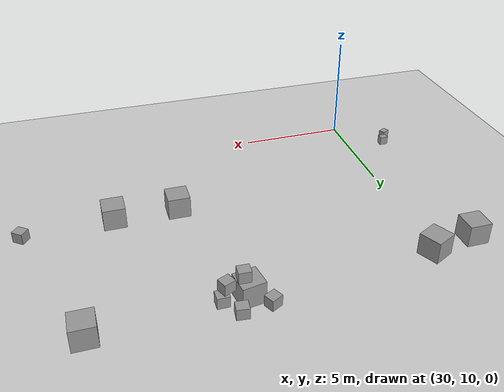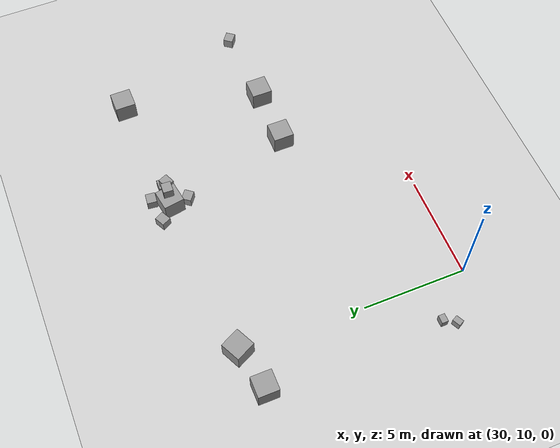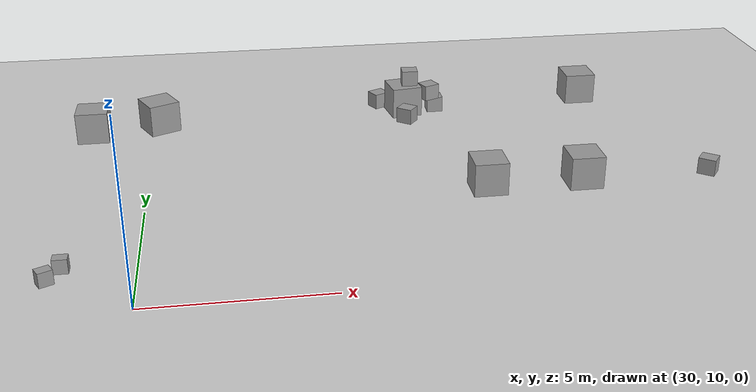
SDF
<sdf version="1.6">
 <world name="default">
  <model name="ground_plane">
   <static>1</static>
   <link name="link">
    <collision name="collision">
     <geometry><plane><normal>0 0 1</normal><size>100 100</size></plane></geometry>
     <surface><friction><ode><mu>100</mu><mu2>50</mu2></ode></friction></surface>
    </collision>
    <visual name="visual">
     <cast_shadows>0</cast_shadows>
     <geometry><plane><normal>0 0 1</normal><size>100 100</size></plane></geometry>
    </visual>
   </link>
  </model>
  <model name="unit_box_13">
   <pose>28.1368 20.5856 0.499995 0 1e-05 -5e-06</pose>
   <link name="link">
    <inertial>
     <mass>1</mass>
     <inertia>
      <ixx>0.166667</ixx>
      <ixy>0</ixy>
      <ixz>0</ixz>
      <iyy>0.166667</iyy>
      <iyz>0</iyz>
      <izz>0.166667</izz>
     </inertia>
    </inertial>
    <collision name="collision"><geometry><box><size>1 1 1</size></box></geometry></collision>
    <visual name="visual">
     <geometry><box><size>1 1 1</size></box></geometry>
     <material>
      <script><name>Gazebo/Grey</name><uri>file://media/materials/scripts/gazebo.material</uri></script>
     </material>
    </visual>
   </link>
  </model>
  <model name="unit_box_14">
   <pose>30.2002 21.0256 0.5 0 -0 0.452301</pose>
   <link name="link">
    <inertial>
     <mass>1</mass>
     <inertia>
      <ixx>0.166667</ixx>
      <ixy>0</ixy>
      <ixz>0</ixz>
      <iyy>0.166667</iyy>
      <iyz>0</iyz>
      <izz>0.166667</izz>
     </inertia>
    </inertial>
    <collision name="collision"><geometry><box><size>1 1 1</size></box></geometry></collision>
    <visual name="visual">
     <geometry><box><size>1 1 1</size></box></geometry>
     <material>
      <script><name>Gazebo/Grey</name><uri>file://media/materials/scripts/gazebo.material</uri></script>
     </material>
    </visual>
   </link>
  </model>
  <model name="unit_box_27">
   <pose>42.6981 15.1111 0.499995 -0 -1e-05 -2e-05</pose>
   <link name="link">
    <inertial>
     <mass>1</mass>
     <inertia>
      <ixx>0.166667</ixx>
      <ixy>0</ixy>
      <ixz>0</ixz>
      <iyy>0.166667</iyy>
      <iyz>0</iyz>
      <izz>0.166667</izz>
     </inertia>
    </inertial>
    <collision name="collision"><geometry><box><size>1 1 1</size></box></geometry></collision>
    <visual name="visual">
     <geometry><box><size>1 1 1</size></box></geometry>
     <material>
      <script><name>Gazebo/Grey</name><uri>file://media/materials/scripts/gazebo.material</uri></script>
     </material>
    </visual>
   </link>
  </model>
  <model name="unit_box_28">
   <pose>44.522 21.7416 0.499995 -0 1e-05 -2.6e-05</pose>
   <link name="link">
    <inertial>
     <mass>1</mass>
     <inertia>
      <ixx>0.166667</ixx>
      <ixy>0</ixy>
      <ixz>0</ixz>
      <iyy>0.166667</iyy>
      <iyz>0</iyz>
      <izz>0.166667</izz>
     </inertia>
    </inertial>
    <collision name="collision"><geometry><box><size>1 1 1</size></box></geometry></collision>
    <visual name="visual">
     <geometry><box><size>1 1 1</size></box></geometry>
     <material>
      <script><name>Gazebo/Grey</name><uri>file://media/materials/scripts/gazebo.material</uri></script>
     </material>
    </visual>
   </link>
  </model>
  <model name="unit_box_29">
   <pose>39.8352 15.0976 0.499995 0 1e-05 -5e-06</pose>
   <link name="link">
    <inertial>
     <mass>1</mass>
     <inertia>
      <ixx>0.166667</ixx>
      <ixy>0</ixy>
      <ixz>0</ixz>
      <iyy>0.166667</iyy>
      <iyz>0</iyz>
      <izz>0.166667</izz>
     </inertia>
    </inertial>
    <collision name="collision"><geometry><box><size>1 1 1</size></box></geometry></collision>
    <visual name="visual">
     <geometry><box><size>1 1 1</size></box></geometry>
     <material>
      <script><name>Gazebo/Grey</name><uri>file://media/materials/scripts/gazebo.material</uri></script>
     </material>
    </visual>
   </link>
  </model>
  <model name="unit_box_30">
   <pose>38.3279 21.3728 0.494445 0.000851 0.005459 0.161318</pose>
   <link name="link">
    <inertial>
     <mass>1</mass>
     <inertia>
      <ixx>0.166667</ixx>
      <ixy>0</ixy>
      <ixz>0</ixz>
      <iyy>0.166667</iyy>
      <iyz>0</iyz>
      <izz>0.166667</izz>
     </inertia>
    </inertial>
    <collision name="collision"><geometry><box><size>1 1 1</size></box></geometry></collision>
    <visual name="visual">
     <geometry><box><size>1 1 1</size></box></geometry>
     <material>
      <script><name>Gazebo/Grey</name><uri>file://media/materials/scripts/gazebo.material</uri></script>
     </material>
    </visual>
   </link>
  </model>
  <model name="unit_box_42_clone_0">
   <pose>27.7598 11.4922 0.206837 0 -0 0.469055</pose>
   <link name="link">
    <inertial>
     <mass>1</mass>
     <inertia>
      <ixx>0.166667</ixx>
      <ixy>0</ixy>
      <ixz>0</ixz>
      <iyy>0.166667</iyy>
      <iyz>0</iyz>
      <izz>0.166667</izz>
     </inertia>
    </inertial>
    <collision name="collision">
     <geometry><box><size>0.396678 0.307031 0.413675</size></box></geometry>
    </collision>
    <visual name="visual">
     <geometry><box><size>0.396678 0.307031 0.413675</size></box></geometry>
     <material>
      <script><name>Gazebo/Grey</name><uri>file://media/materials/scripts/gazebo.material</uri></script>
     </material>
    </visual>
   </link>
  </model>
  <model name="unit_box_42_clone_2">
   <pose>28.097 12.0584 0.206837 0 -0 0</pose>
   <link name="link">
    <inertial>
     <mass>1</mass>
     <inertia>
      <ixx>0.166667</ixx>
      <ixy>0</ixy>
      <ixz>0</ixz>
      <iyy>0.166667</iyy>
      <iyz>0</iyz>
      <izz>0.166667</izz>
     </inertia>
    </inertial>
    <collision name="collision">
     <geometry><box><size>0.396678 0.307031 0.413675</size></box></geometry>
    </collision>
    <visual name="visual">
     <geometry><box><size>0.396678 0.307031 0.413675</size></box></geometry>
     <material>
      <script><name>Gazebo/Grey</name><uri>file://media/materials/scripts/gazebo.material</uri></script>
     </material>
    </visual>
   </link>
  </model>
  <model name="unit_box_30_clone">
   <pose>39.3974 21.4071 0.25457 0.003434 -0.006384 0.005606</pose>
   <link name="link">
    <inertial>
     <mass>1</mass>
     <inertia>
      <ixx>0.166667</ixx>
      <ixy>0</ixy>
      <ixz>0</ixz>
      <iyy>0.166667</iyy>
      <iyz>0</iyz>
      <izz>0.166667</izz>
     </inertia>
    </inertial>
    <collision name="collision"><geometry><box><size>0.522325 0.47304 0.505069</size></box></geometry></collision>
    <visual name="visual">
     <geometry><box><size>0.522325 0.47304 0.505069</size></box></geometry>
     <material>
      <script><name>Gazebo/Grey</name><uri>file://media/materials/scripts/gazebo.material</uri></script>
     </material>
    </visual>
   </link>
  </model>
  <model name="unit_box_30_clone_0">
   <pose>39.178 21.2502 0.757787 4e-06 -0.008763 0.407809</pose>
   <link name="link">
    <inertial>
     <mass>1</mass>
     <inertia>
      <ixx>0.166667</ixx>
      <ixy>0</ixy>
      <ixz>0</ixz>
      <iyy>0.166667</iyy>
      <iyz>0</iyz>
      <izz>0.166667</izz>
     </inertia>
    </inertial>
    <collision name="collision"><geometry><box><size>0.522325 0.47304 0.505069</size></box></geometry></collision>
    <visual name="visual">
     <geometry><box><size>0.522325 0.47304 0.505069</size></box></geometry>
     <material>
      <script><name>Gazebo/Grey</name><uri>file://media/materials/scripts/gazebo.material</uri></script>
     </material>
    </visual>
   </link>
  </model>
  <model name="unit_box_30_clone_1">
   <pose>38.8376 22.1798 0.252534 0 -0 -0.107781</pose>
   <link name="link">
    <inertial>
     <mass>1</mass>
     <inertia>
      <ixx>0.166667</ixx>
      <ixy>0</ixy>
      <ixz>0</ixz>
      <iyy>0.166667</iyy>
      <iyz>0</iyz>
      <izz>0.166667</izz>
     </inertia>
    </inertial>
    <collision name="collision"><geometry><box><size>0.522325 0.47304 0.505069</size></box></geometry></collision>
    <visual name="visual">
     <geometry><box><size>0.522325 0.47304 0.505069</size></box></geometry>
     <material>
      <script><name>Gazebo/Grey</name><uri>file://media/materials/scripts/gazebo.material</uri></script>
     </material>
    </visual>
   </link>
  </model>
  <model name="unit_box_30_clone_2">
   <pose>38.5341 21.3745 1.24585 -0.000332 0.005542 -0.051632</pose>
   <link name="link">
    <inertial>
     <mass>1</mass>
     <inertia>
      <ixx>0.166667</ixx>
      <ixy>0</ixy>
      <ixz>0</ixz>
      <iyy>0.166667</iyy>
      <iyz>0</iyz>
      <izz>0.166667</izz>
     </inertia>
    </inertial>
    <collision name="collision"><geometry><box><size>0.522325 0.47304 0.505069</size></box></geometry></collision>
    <visual name="visual">
     <geometry><box><size>0.522325 0.47304 0.505069</size></box></geometry>
     <material>
      <script><name>Gazebo/Grey</name><uri>file://media/materials/scripts/gazebo.material</uri></script>
     </material>
    </visual>
   </link>
  </model>
  <model name="unit_box_30_clone_3">
   <pose>37.5742 22.0132 0.252534 0 -0 0.473002</pose>
   <link name="link">
    <inertial>
     <mass>1</mass>
     <inertia>
      <ixx>0.166667</ixx>
      <ixy>0</ixy>
      <ixz>0</ixz>
      <iyy>0.166667</iyy>
      <iyz>0</iyz>
      <izz>0.166667</izz>
     </inertia>
    </inertial>
    <collision name="collision"><geometry><box><size>0.522325 0.47304 0.505069</size></box></geometry></collision>
    <visual name="visual">
     <geometry><box><size>0.522325 0.47304 0.505069</size></box></geometry>
     <material>
      <script><name>Gazebo/Grey</name><uri>file://media/materials/scripts/gazebo.material</uri></script>
     </material>
    </visual>
   </link>
  </model>
  <model name="unit_box_30_clone_4">
   <pose>38.333 20.5004 0.252534 -0 -0 -0.655152</pose>
   <link name="link">
    <inertial>
     <mass>1</mass>
     <inertia>
      <ixx>0.166667</ixx>
      <ixy>0</ixy>
      <ixz>0</ixz>
      <iyy>0.166667</iyy>
      <iyz>0</iyz>
      <izz>0.166667</izz>
     </inertia>
    </inertial>
    <collision name="collision"><geometry><box><size>0.522325 0.47304 0.505069</size></box></geometry></collision>
    <visual name="visual">
     <geometry><box><size>0.522325 0.47304 0.505069</size></box></geometry>
     <material>
      <script><name>Gazebo/Grey</name><uri>file://media/materials/scripts/gazebo.material</uri></script>
     </material>
    </visual>
   </link>
  </model>
  <model name="unit_box_30_clone_4_clone_3">
   <pose>46.659 15.2411 0.252534 0 0 -0.656007</pose>
   <link name="link">
    <inertial>
     <mass>1</mass>
     <inertia>
      <ixx>0.166667</ixx>
      <ixy>0</ixy>
      <ixz>0</ixz>
      <iyy>0.166667</iyy>
      <iyz>0</iyz>
      <izz>0.166667</izz>
     </inertia>
    </inertial>
    <collision name="collision"><geometry><box><size>0.522325 0.47304 0.505069</size></box></geometry></collision>
    <visual name="visual">
     <geometry><box><size>0.522325 0.47304 0.505069</size></box></geometry>
     <material>
      <script><name>Gazebo/Grey</name><uri>file://media/materials/scripts/gazebo.material</uri></script>
     </material>
    </visual>
   </link>
  </model>
 </world>
</sdf>
